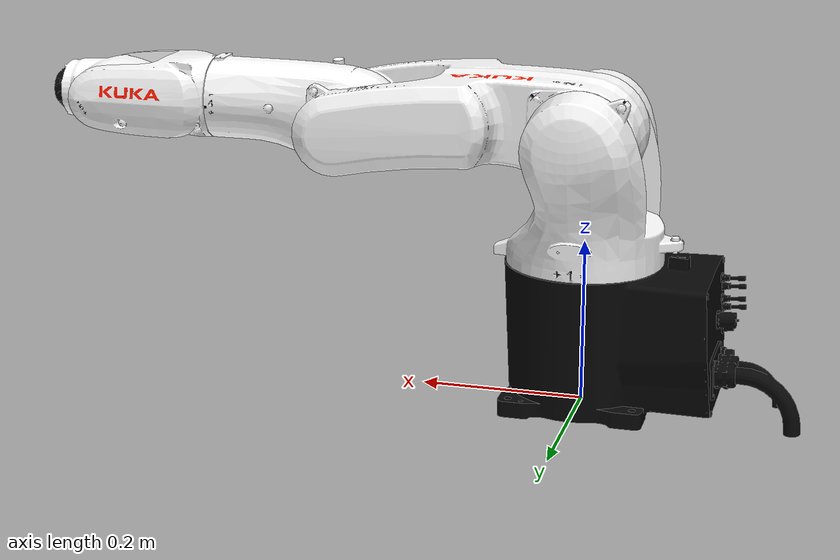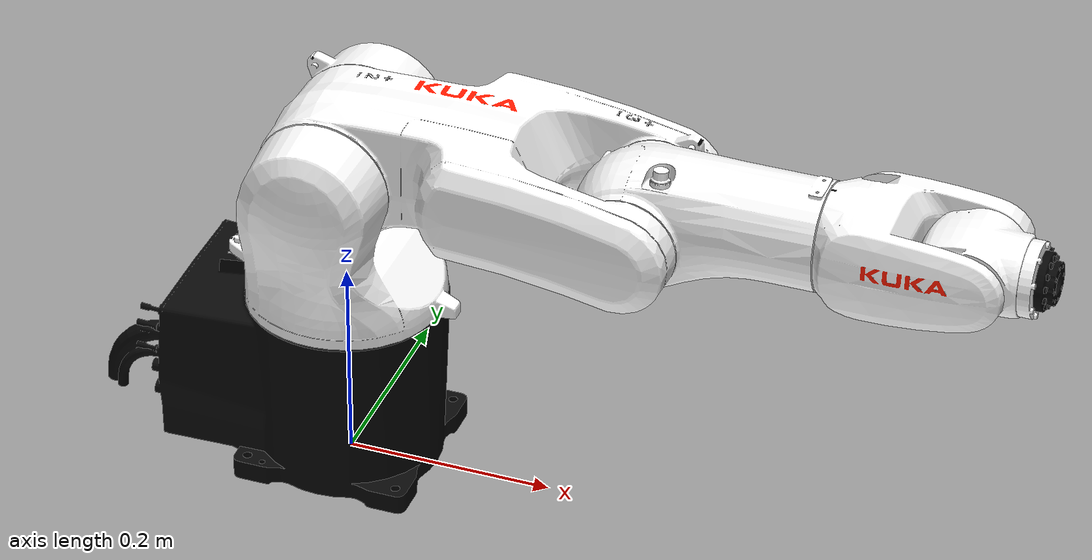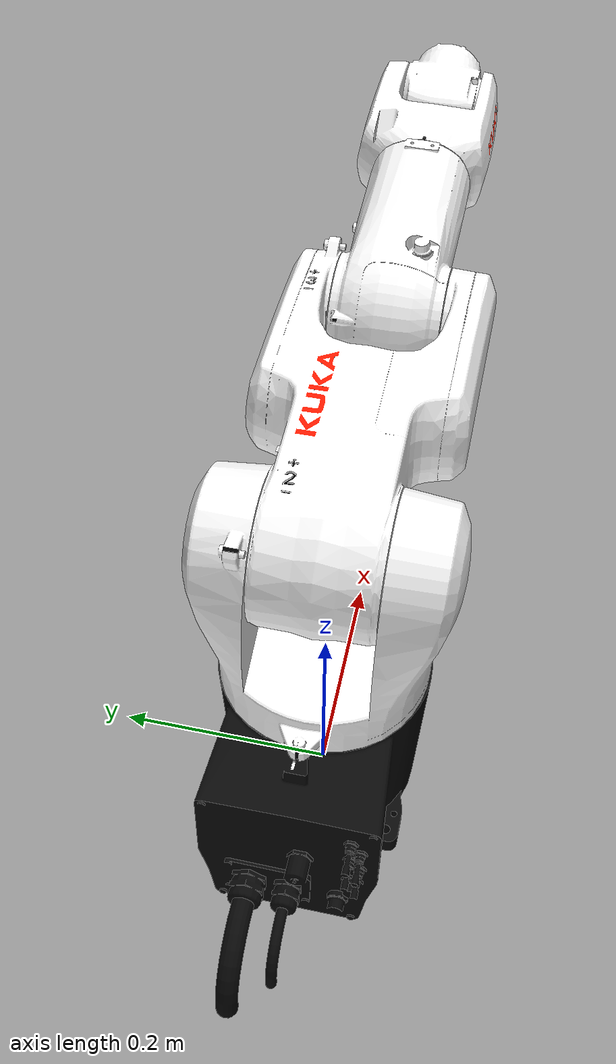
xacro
<?xml version="1.0" encoding="UTF-8"?>
<robot xmlns:xacro="http://ros.org/wiki/xacro" name="kr4_r600">
  <!-- Import urdf file  -->
  <xacro:include filename="$(find kuka_agilus_support)/urdf/kr4_r600_macro.xacro"/>
  <xacro:include filename="$(find kuka_agilus_support)/urdf/kr_agilus_ros2_control_macro.xacro"/>
  <!-- Read additional arguments  -->
  <xacro:arg name="driver_version" default="rsi_only"/>
  <xacro:arg name="mode" default="hardware"/>
  <xacro:arg name="gpio_config" default=""/>
  <xacro:arg name="roundtrip_time" default="0"/>
  <xacro:arg name="client_ip" default="0.0.0.0"/>
  <xacro:arg name="client_port" default="59152"/>
  <xacro:arg name="mxa_client_port" default="1337"/>
  <xacro:arg name="controller_ip" default="0.0.0.0"/>
  <xacro:arg name="verify_robot_model" default="true"/>
  <xacro:arg name="prefix" default=""/>
  <xacro:arg name="x" default="0"/>
  <xacro:arg name="y" default="0"/>
  <xacro:arg name="z" default="0"/>
  <xacro:arg name="roll" default="0"/>
  <xacro:arg name="pitch" default="0"/>
  <xacro:arg name="yaw" default="0"/>
  <xacro:arg name="rsi_xml_config_file" default=""/>
  <xacro:kuka_agilus_ros2_control name="$(arg prefix)kr4_r600" driver_version="$(arg driver_version)" client_ip="$(arg client_ip)" client_port="$(arg client_port)" mxa_client_port="$(arg mxa_client_port)" controller_ip="$(arg controller_ip)" prefix="$(arg prefix)" mode="$(arg mode)" gpio_config="$(arg gpio_config)" roundtrip_time="$(arg roundtrip_time)" verify_robot_model="$(arg verify_robot_model)" rsi_xml_config_file="$(arg rsi_xml_config_file)">
    <ext_axes_ros2_control_joints/>
  </xacro:kuka_agilus_ros2_control>
  <!-- world link -->
  <link name="world"/>
  <!-- robot links, joints -->
  <xacro:kuka_kr4_r600_robot prefix="$(arg prefix)" package_name="kuka_agilus_support"/>
  <!-- default world - base_link joint -->
  <joint name="$(arg prefix)world-base_link" type="fixed">
    <parent link="world"/>
    <child link="$(arg prefix)base_link"/>
    <origin xyz="$(arg x) $(arg y) $(arg z)" rpy="$(arg roll) $(arg pitch) $(arg yaw)"/>
  </joint>
</robot>

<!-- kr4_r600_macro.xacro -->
<robot xmlns:xacro="http://www.ros.org/wiki/xacro" name="kr4_r600">
  <xacro:macro name="kuka_kr4_r600_robot" params="prefix package_name">
    <link name="${prefix}base"/>
    <link name="${prefix}base_link">
      <collision>
        <geometry>
          <mesh filename="package://${package_name}/meshes/kr4_r600/collision/base_link.stl"/>
        </geometry>
        <origin rpy="0.0 -0.0 0.0" xyz="0.0 0.0 0.0"/>
      </collision>
      <inertial>
        <inertia ixx="0.01774610228117179" ixy="0.0" ixz="0.0" iyy="0.028906995427589975" iyz="0.0" izz="0.029332705372297367"/>
        <mass value="7.9199E0"/>
        <origin rpy="-1.7283552587907651 -0.8152157323237046 -0.0012009546310596307" xyz="-0.03449171870856955 2.768936476470664E-4 0.07809836071162515"/>
      </inertial>
      <visual>
        <geometry>
          <mesh filename="package://${package_name}/meshes/kr4_r600/visual/base_link.dae"/>
        </geometry>
        <origin rpy="0.0 -0.0 0.0" xyz="0.0 0.0 0.0"/>
      </visual>
    </link>
    <link name="${prefix}flange"/>
    <link name="${prefix}link_1">
      <collision>
        <geometry>
          <mesh filename="package://${package_name}/meshes/kr4_r600/collision/link_1.stl"/>
        </geometry>
        <origin rpy="-3.141592653589793 0.0 -0.0" xyz="0.0 -1.8296223179261457e-17 0.1494"/>
      </collision>
      <inertial>
        <inertia ixx="0.030028179638206597" ixy="0.0" ixz="0.0" iyy="0.038141320031384755" iyz="0.0" izz="0.04676200213898878"/>
        <mass value="4.3889999999999993E0"/>
        <origin rpy="1.0533923623613999 0.7905723463317713 -0.7586123817645086" xyz="-0.01884847300250627 -0.03201475844531785 -0.09593960039781274"/>
      </inertial>
      <visual>
        <geometry>
          <mesh filename="package://${package_name}/meshes/kr4_r600/visual/link_1.dae"/>
        </geometry>
        <origin rpy="-3.141592653589793 0.0 -0.0" xyz="0.0 -1.8296223179261457e-17 0.1494"/>
      </visual>
    </link>
    <link name="${prefix}link_2">
      <collision>
        <geometry>
          <mesh filename="package://${package_name}/meshes/kr4_r600/collision/link_2.stl"/>
        </geometry>
        <origin rpy="1.5707963267948968 -0.0 1.5707963267948966" xyz="-0.33 2.020667218593133e-17 -0.06359999999999998"/>
      </collision>
      <inertial>
        <inertia ixx="0.09394991137453979" ixy="0.0" ixz="0.0" iyy="0.02056656713129677" iyz="0.0" izz="0.10043770827164841"/>
        <mass value="7.3011000000000008E0"/>
        <origin rpy="1.2271602958170722 -1.447079780552905 0.347742252781664" xyz="0.0946442864773801 -0.0028690772623303326 -0.04618476188519538"/>
      </inertial>
      <visual>
        <geometry>
          <mesh filename="package://${package_name}/meshes/kr4_r600/visual/link_2.dae"/>
        </geometry>
        <origin rpy="1.5707963267948968 -0.0 1.5707963267948966" xyz="-0.33 2.020667218593133e-17 -0.06359999999999998"/>
      </visual>
    </link>
    <link name="${prefix}link_3">
      <collision>
        <geometry>
          <mesh filename="package://${package_name}/meshes/kr4_r600/collision/link_3.stl"/>
        </geometry>
        <origin rpy="1.5707963267948968 -0.0 -0.0" xyz="-1.775737858763662e-17 0.62 -0.05899999999999997"/>
      </collision>
      <inertial>
        <inertia ixx="0.0045982501292917855" ixy="0.0" ixz="0.0" iyy="0.011787648200691234" iyz="0.0" izz="0.013564920830002653"/>
        <mass value="2.6794E0"/>
        <origin rpy="0.7584954844630123 -0.044917388484050844 -0.03729235250137838" xyz="0.041279098118981866 -0.012457938344405462 -0.050696812495334774"/>
      </inertial>
      <visual>
        <geometry>
          <mesh filename="package://${package_name}/meshes/kr4_r600/visual/link_3.dae"/>
        </geometry>
        <origin rpy="1.5707963267948968 -0.0 -0.0" xyz="-1.775737858763662e-17 0.62 -0.05899999999999997"/>
      </visual>
    </link>
    <link name="${prefix}link_4">
      <collision>
        <geometry>
          <mesh filename="package://${package_name}/meshes/kr4_r600/collision/link_4.stl"/>
        </geometry>
        <origin rpy="1.8369701987210297e-16 1.5707963267948966 0.0" xyz="-0.64 3.32343745553842e-17 0.16940000000000002"/>
      </collision>
      <inertial>
        <inertia ixx="0.0034646140071424784" ixy="0.0" ixz="0.0" iyy="0.010430459591567189" iyz="0.0" izz="0.011550828790260903"/>
        <mass value="2.3085000000000004E0"/>
        <origin rpy="1.0746214152803213 -1.4194942686782217 -1.3965538764055139" xyz="0.002944897552523283 0.01051174139051332 -0.047277492744206194"/>
      </inertial>
      <visual>
        <geometry>
          <mesh filename="package://${package_name}/meshes/kr4_r600/visual/link_4.dae"/>
        </geometry>
        <origin rpy="1.8369701987210297e-16 1.5707963267948966 0.0" xyz="-0.64 3.32343745553842e-17 0.16940000000000002"/>
      </visual>
    </link>
    <link name="${prefix}link_5">
      <collision>
        <geometry>
          <mesh filename="package://${package_name}/meshes/kr4_r600/collision/link_5.stl"/>
        </geometry>
        <origin rpy="1.5707963267948968 -3.749399456654644e-33 -6.123233995736766e-17" xyz="-0.31 0.64 -0.045"/>
      </collision>
      <inertial>
        <inertia ixx="0.0013744914979402106" ixy="0.0" ixz="0.0" iyy="8.533815241986891E-4" iyz="0.0" izz="0.0015608415710917883"/>
        <mass value="1.2008E0"/>
        <origin rpy="1.6997660530980612 -1.5000060050439952 3.012467745405211" xyz="0.011414082278481013 1.573617588274495E-5 -0.040395286475682884"/>
      </inertial>
      <visual>
        <geometry>
          <mesh filename="package://${package_name}/meshes/kr4_r600/visual/link_5.dae"/>
        </geometry>
        <origin rpy="1.5707963267948968 -3.749399456654644e-33 -6.123233995736766e-17" xyz="-0.31 0.64 -0.045"/>
      </visual>
    </link>
    <link name="${prefix}link_6">
      <collision>
        <geometry>
          <mesh filename="package://${package_name}/meshes/kr4_r600/collision/link_6.stl"/>
        </geometry>
        <origin rpy="1.2246467991473532e-16 1.5707963267948966 0.0" xyz="-0.64 -3.533106015540123e-18 0.3565"/>
      </collision>
      <inertial>
        <inertia ixx="3.960000166176786E-5" ixy="0.0" ixz="0.0" iyy="6.44099787180148E-5" iyz="0.0" izz="6.444045037761347E-5"/>
        <mass value="2.348E-1"/>
        <origin rpy="-1.9727351825392057 -1.5704003613069375 2.6252731092768764" xyz="2.8471039182282795E-6 -2.8471039182282795E-6 -0.014385407155025554"/>
      </inertial>
      <visual>
        <geometry>
          <mesh filename="package://${package_name}/meshes/kr4_r600/visual/link_6.dae"/>
        </geometry>
        <origin rpy="1.2246467991473532e-16 1.5707963267948966 0.0" xyz="-0.64 -3.533106015540123e-18 0.3565"/>
      </visual>
    </link>
    <link name="${prefix}tool0"/>
    <joint name="${prefix}base_link-base" type="fixed">
      <child link="${prefix}base"/>
      <parent link="${prefix}base_link"/>
    </joint>
    <joint name="${prefix}joint_1" type="revolute">
      <axis xyz="0.0 0.0 1.0"/>
      <child link="${prefix}link_1"/>
      <limit effort="1.1901599999999999E2" lower="-2.967059725E0" upper="2.967059725E0" velocity="5.8643062867009474E0"/>
      <origin rpy="3.141592653589793 -0.0 0.0" xyz="0.0 0.0 0.1494"/>
      <parent link="${prefix}base_link"/>
    </joint>
    <joint name="${prefix}joint_2" type="revolute">
      <axis xyz="0.0 0.0 1.0"/>
      <child link="${prefix}link_2"/>
      <limit effort="1.058514984E2" lower="-3.4033920375E0" upper="6.981317E-1" velocity="5.8643062867009474E0"/>
      <origin rpy="1.5707963267948966 -0.0 0.0" xyz="0.0 -0.0636 -0.1806"/>
      <parent link="${prefix}link_1"/>
    </joint>
    <joint name="${prefix}joint_3" type="revolute">
      <axis xyz="0.0 0.0 1.0"/>
      <child link="${prefix}link_3"/>
      <limit effort="5.431496248E1" lower="-2.0071286375E0" upper="2.617993875E0" velocity="8.5084763634811011E0"/>
      <origin rpy="0.0 -0.0 0.0" xyz="0.29 0.0 -0.004599999999999999"/>
      <parent link="${prefix}link_2"/>
    </joint>
    <joint name="${prefix}joint_4" type="revolute">
      <axis xyz="0.0 0.0 1.0"/>
      <child link="${prefix}link_4"/>
      <limit effort="1.181160928E1" lower="-3.2288591125E0" upper="3.2288591125E0" velocity="1.0471962421996588E1"/>
      <origin rpy="1.5707963267948966 -0.0 -1.5707963267948966" xyz="0.16940000000000002 -0.02 -0.059000000000000004"/>
      <parent link="${prefix}link_3"/>
    </joint>
    <joint name="${prefix}joint_5" type="revolute">
      <axis xyz="0.0 0.0 1.0"/>
      <child link="${prefix}link_5"/>
      <limit effort="1.232779518E1" lower="-2.0943951E0" upper="2.0943951E0" velocity="9.23453476366542E0"/>
      <origin rpy="0.0 1.5707963267948966 1.5707963267948966" xyz="0.0 0.045 -0.1406"/>
      <parent link="${prefix}link_4"/>
    </joint>
    <joint name="${prefix}joint_6" type="revolute">
      <axis xyz="0.0 0.0 1.0"/>
      <child link="${prefix}link_6"/>
      <limit effort="6.916321312E0" lower="-6.108652375E0" upper="6.108652375E0" velocity="1.3962634015954636E1"/>
      <origin rpy="1.5707963267948966 -0.0 -1.5707963267948966" xyz="0.0465 0.0 -0.045"/>
      <parent link="${prefix}link_5"/>
    </joint>
    <joint name="${prefix}link6-flange" type="fixed">
      <child link="${prefix}flange"/>
      <origin rpy="0.0 1.5707963267948966 0.0" xyz="0.0 0.0 -0.0285"/>
      <parent link="${prefix}link_6"/>
    </joint>
    <joint name="${prefix}link6-tool0" type="fixed">
      <child link="${prefix}tool0"/>
      <origin rpy="3.141592653589793 1.2246467991473532E-16 3.141592653589793" xyz="0.0 0.0 -0.0285"/>
      <parent link="${prefix}link_6"/>
    </joint>
  </xacro:macro>
</robot>
